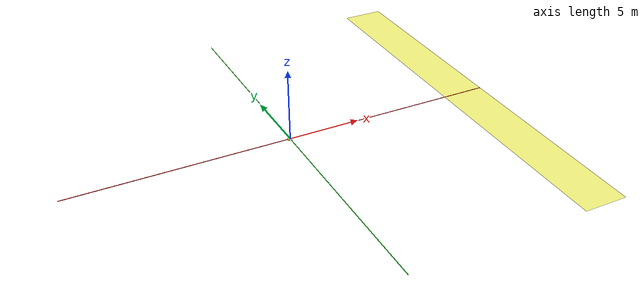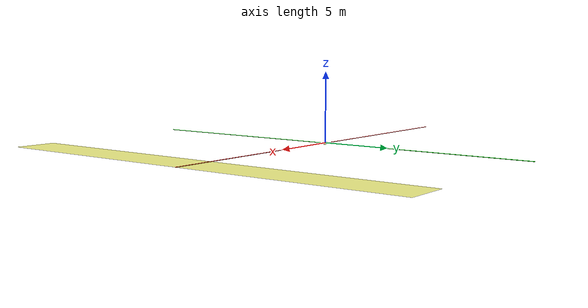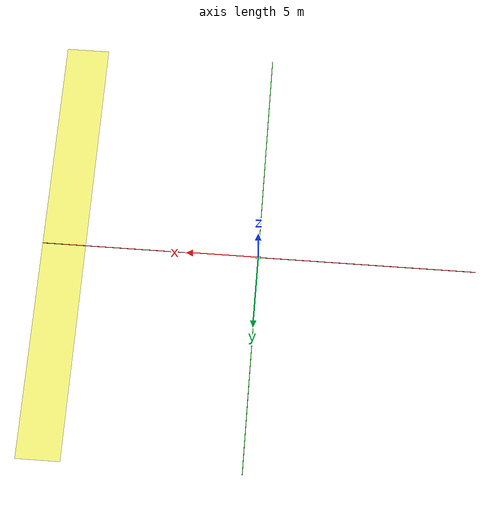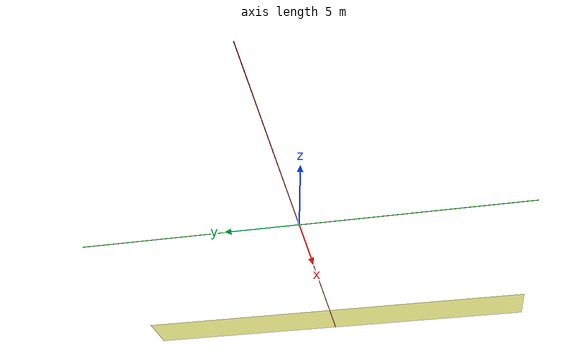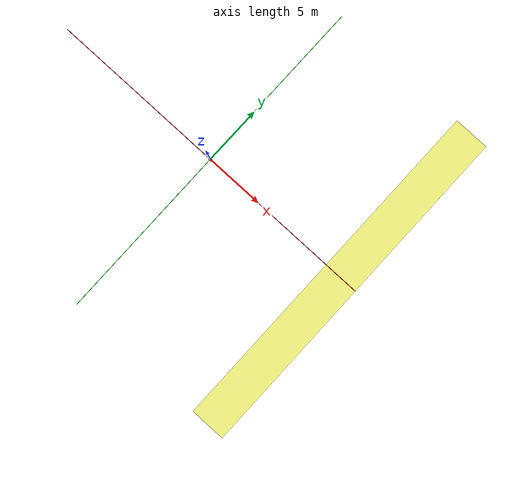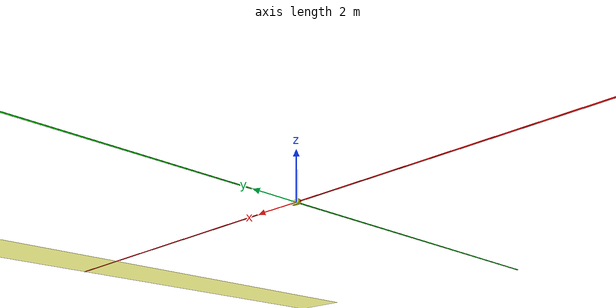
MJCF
<mujoco model="3D Inverted Double Pendulum Trajectory">
    <compiler inertiafromgeom="true"/>
    <default>
        <joint armature="0" damping="1" limited="true"/>
        <geom contype="0" friction="1 0.5 0.5" rgba="0.7 0.7 0 1"/>
        <tendon/>
        <motor ctrlrange="-3 3"/>
    </default>
    <option gravity="0 0 -9.81" integrator="RK4" timestep="0.005"/>
    <size nstack="3000"/>
    <worldbody>
        <geom name="cart_rail_x" pos="0 0 0" quat="0.707 0 0.707 0" rgba="1 0 0 1" size="0.02 15" type="capsule"/>
        <geom name="cart_rail_y" pos="0 0 0" quat="0.707 0.707 0 0" rgba="0 1 0 1" size="0.02 15" type="capsule"/>
        <geom name="x12_plane" pos="13.5 0 0" size="1.5 15 0.001" rgba="1 1 0 0.5" type="box"/>        <body name="cart" pos="0 0 0">
            <joint axis="1 0 0" limited="true" name="slider_x" pos="0 0 0" range="-15 15" type="slide"/>
            <joint axis="0 1 0" limited="true" name="slider_y" pos="0 0 0" range="-15 15" type="slide"/>
            <geom name="cart" pos="0 0 0" quat="0.707 0 0.707 0" size="0.1 0.1" type="capsule"/>
            <body name="pole1" pos="0 0 0">
                <joint name="ball1" type="ball" pos="0 0 0" limited="false"/>
                <geom fromto="0 0 0 0.001 0 0.6" name="cpole1" rgba="0 0.7 0.7 1" size="0.049 0.3" type="capsule"/>
                <body name="pole2" pos="0.001 0 0.6">
                    <joint name="ball2" type="ball" pos="0 0 0" limited="false"/>
                    <geom fromto="0 0 0 0.001 0 0.6" name="cpole2" rgba="0.7 0.7 0.7 1" size="0.049 0.3" type="capsule"/>
                </body>
            </body>
        </body>
    </worldbody>
    <actuator>
        <motor ctrllimited="true" ctrlrange="-2 2" gear="50" joint="slider_x" name="slide_x"/>
        <motor ctrllimited="true" ctrlrange="-2 2" gear="50" joint="slider_y" name="slide_y"/>
    </actuator>
</mujoco>
